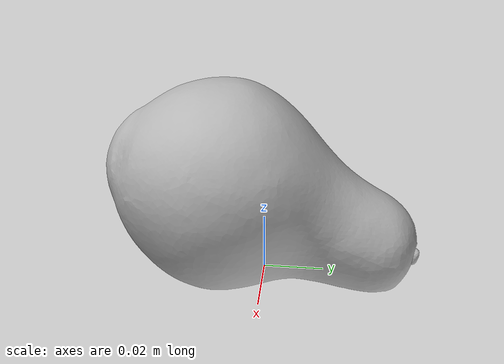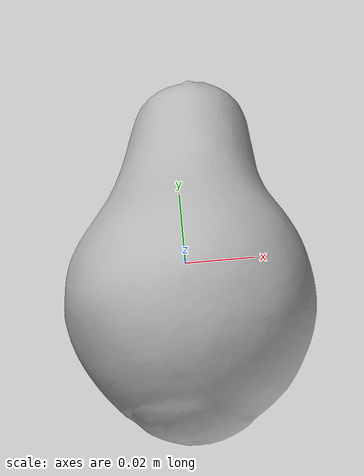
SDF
<?xml version="1.0" ?>
<sdf version='1.8'>
  <model name='ycb_016_pear'>
    <link name='body'>
      <inertial>
        <mass>0.049</mass>
        <pose>0.000744266176 -0.00662146459 0.0301235215 0 0 0</pose>
        <inertia>
          <ixx>3.29098077425e-05</ixx>
          <ixy>-8.92380314661e-07</ixy>
          <ixz>-3.70787907977e-08</ixz>
          <iyy>2.12300250904e-05</iyy>
          <iyz>4.19818593597e-06</iyz>
          <izz>3.1514320564e-05</izz>
        </inertia>
      </inertial>
      <visual name='ycb_016_pear_visual'>
        <pose>0.033287 -0.017697 8.3e-05 0 0 0</pose>
        <geometry>
          <mesh>
            <uri>model://ycb_016_pear/meshes/textured.dae</uri>
          </mesh>
        </geometry>
      </visual>
      <collision name='ycb_016_pear_collision'>
        <pose>0.033287 -0.017697 8.3e-05 0 0 0</pose>
        <geometry>
          <mesh>
            <uri>model://ycb_016_pear/meshes/nontextured.stl</uri>
          </mesh>
        </geometry>
        <max_contacts>10</max_contacts>
        <surface>
          <contact>
            <ode>
              <kp>1e15</kp>
              <kd>1e13</kd>
            </ode>
          </contact>
        </surface>
      </collision>
    </link>
  </model>
</sdf>
